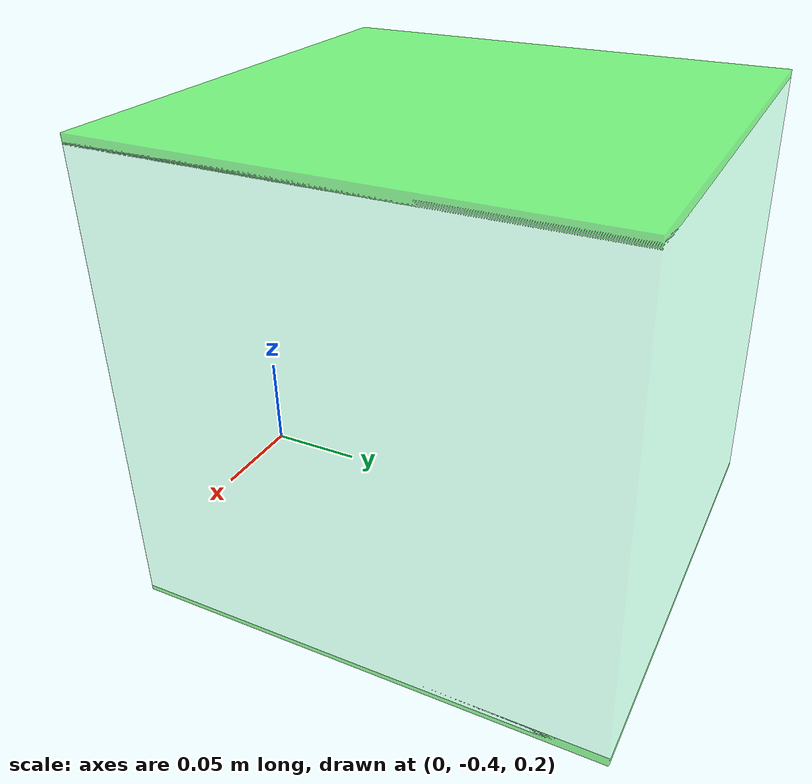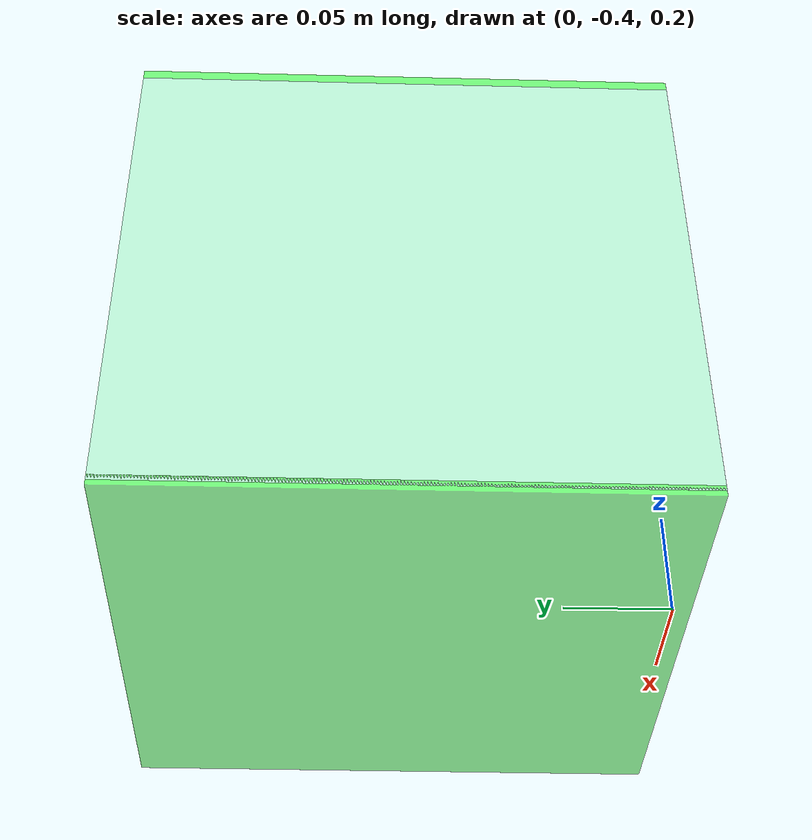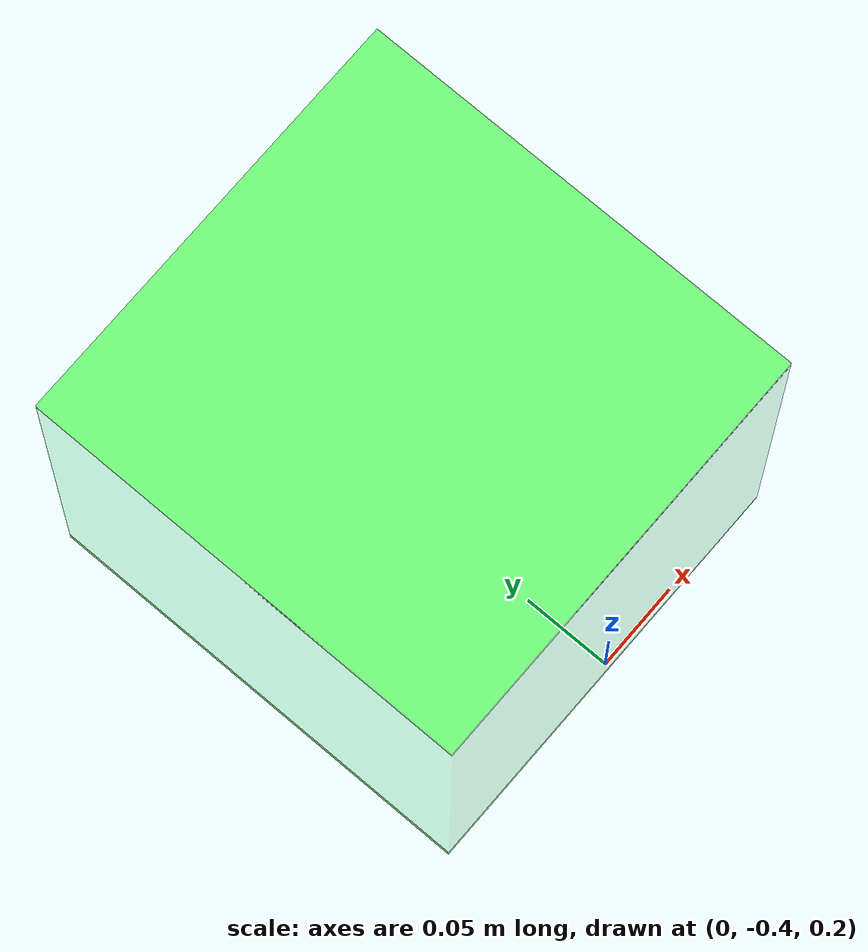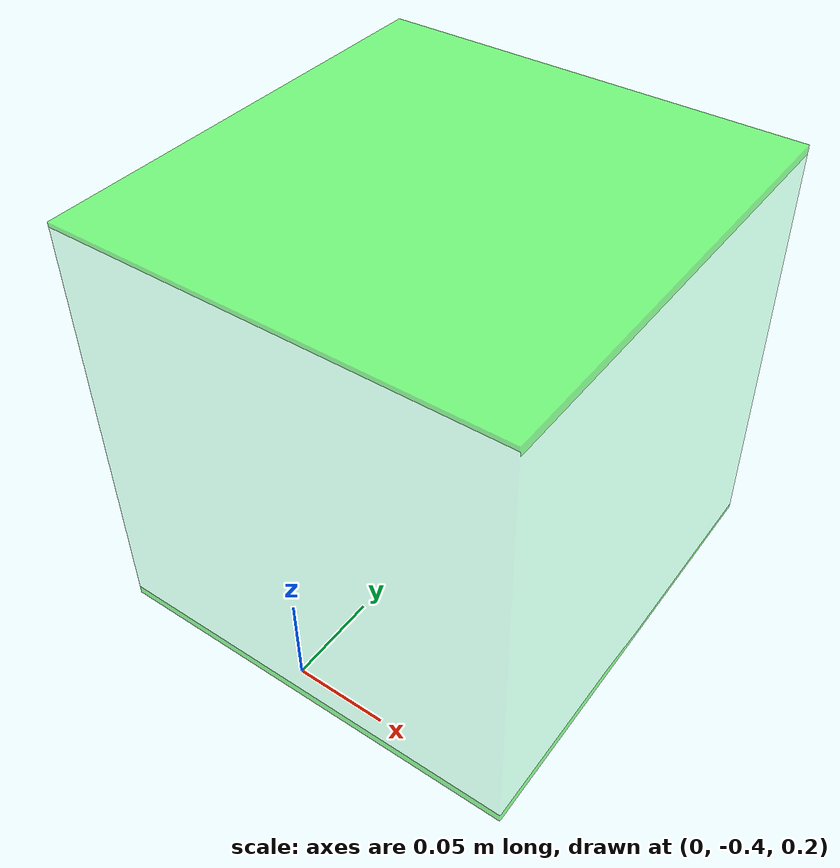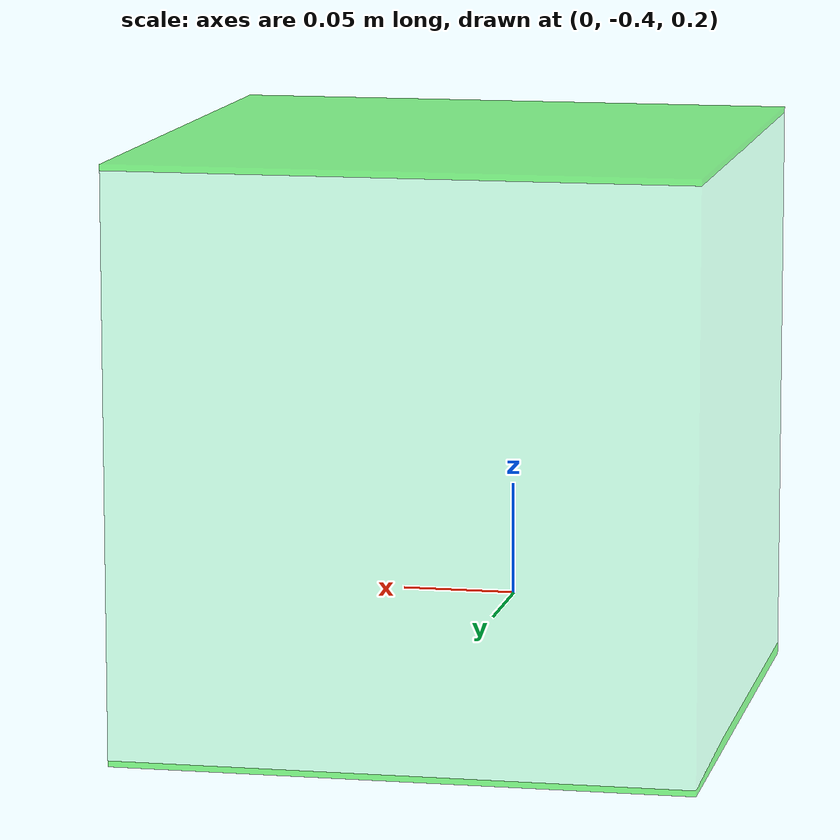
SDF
<?xml version="1.0"?>
<sdf version="1.7">
  <model name="workspace_box">
    <static>true</static>
    <link name="box_link">
      <!-- Visual only - NO collision! Robot can pass through -->
      <visual name="workspace_visual">
        <pose>0 -0.275 0.30 0 0 0</pose>  <!-- Center: X=0, Y=-27.5cm, Z=30cm -->
        <geometry>
          <box>
            <size>0.24 0.25 0.24</size>  <!-- 24cm x 25cm x 24cm (matches workspace) -->
          </box>
        </geometry>
        <material>
          <ambient>0.0 0.8 0.2 0.15</ambient>   <!-- Green, very transparent -->
          <diffuse>0.0 0.9 0.3 0.15</diffuse>
          <specular>0.1 0.1 0.1 0.15</specular>
          <emissive>0.0 0.3 0.1 0.15</emissive>
        </material>
        <transparency>0.85</transparency>  <!-- 85% transparent -->
        <cast_shadows>false</cast_shadows>
      </visual>

      <!-- Wireframe edges for better visibility -->
      <visual name="edge_bottom">
        <pose>0 -0.275 0.18 0 0 0</pose>
        <geometry>
          <box>
            <size>0.24 0.25 0.005</size>
          </box>
        </geometry>
        <material>
          <ambient>0.0 1.0 0.0 0.5</ambient>
          <diffuse>0.0 1.0 0.0 0.5</diffuse>
        </material>
      </visual>

      <visual name="edge_top">
        <pose>0 -0.275 0.42 0 0 0</pose>
        <geometry>
          <box>
            <size>0.24 0.25 0.005</size>
          </box>
        </geometry>
        <material>
          <ambient>0.0 1.0 0.0 0.5</ambient>
          <diffuse>0.0 1.0 0.0 0.5</diffuse>
        </material>
      </visual>

      <!-- NO collision element = robot passes through freely -->
    </link>
  </model>
</sdf>
